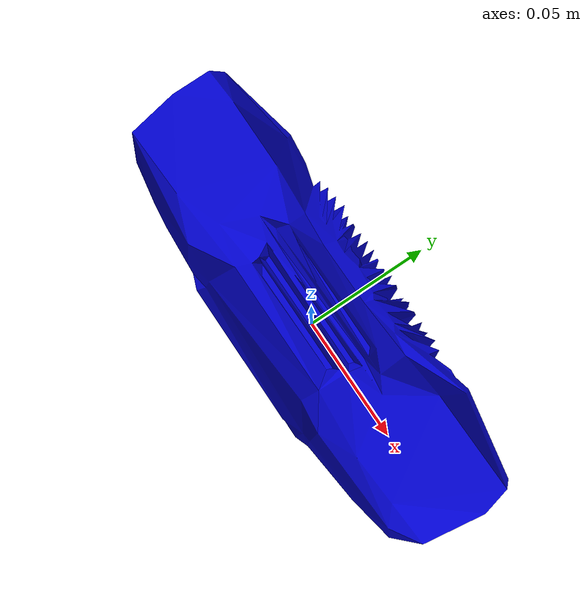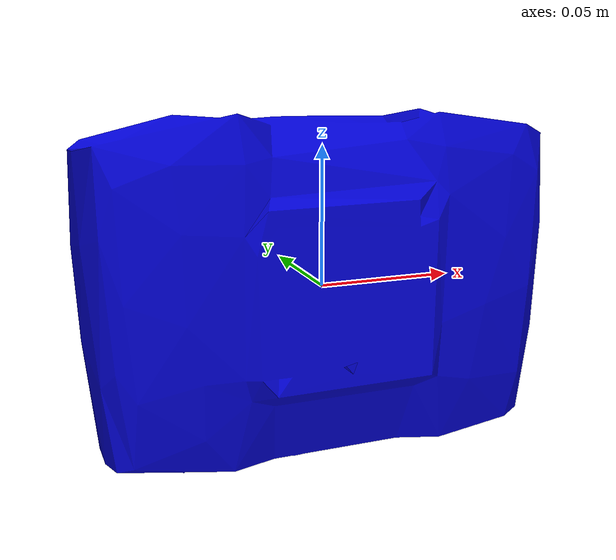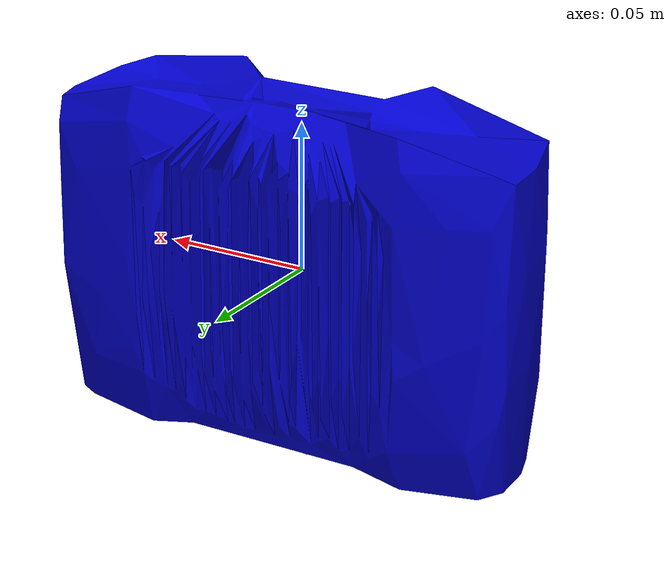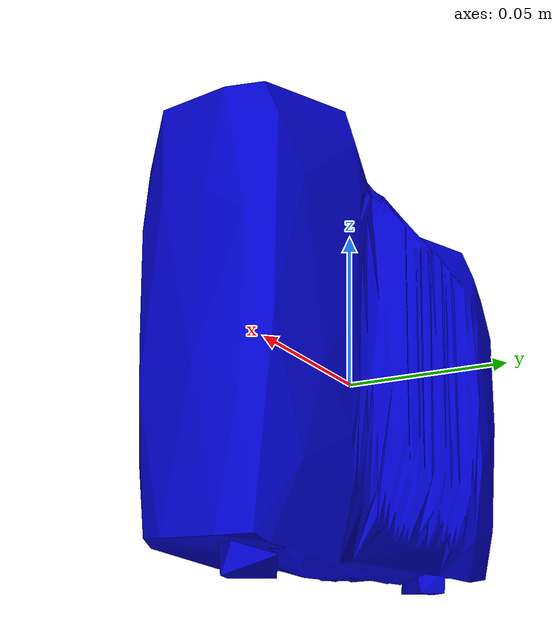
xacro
<?xml version="1.0"?>
<robot xmlns:xacro="http://www.ros.org/wiki/xacro" name="structured_light_sensor_robot">
  <xacro:property name="M_PI" value="3.1415926535897931" />

  <link name="base_link" />

  <joint name="base_sensor" type="fixed">
    <parent link="base_link"/>
    <child link="sensor_link"/>
    <origin xyz="0 0 0" rpy="0 0 0"/>
  </joint>

  <link name="sensor_link">
    <inertial>
      <mass value="0.1"/>
      <inertia ixx="0.01" ixy="0.0" ixz="0.0" iyy="0.01" iyz="0.0" izz="0.01"/>
      <origin xyz="0 0 0" rpy="0 0 0"/>
    </inertial>

    <visual>
      <geometry>
        <mesh filename="package://viewpoint_planning/meshes/zivid_sensor.stl" scale="0.001 0.001 0.001"/>
      </geometry>
      <material name="blue">
        <color rgba="0.0 0.0 0.8 1.0"/>
      </material>
    </visual>

    <collision>
      <geometry>
        <box size="0.17 0.06 0.125"/>
      </geometry>
    </collision>
  </link>

  <joint name="camera_joint" type="fixed">
    <parent link="sensor_link"/>
    <child link="camera_link"/>
    <origin xyz="0 0 0.05" rpy="-${M_PI/2} -${M_PI/2} 0"/>
  </joint>

  <link name="camera_link" />

  <joint name="camera_optical_joint" type="fixed">
    <parent link= "camera_link" />
    <child link= "camera_link_optical" />
    <origin xyz="0 0 0" rpy="-${M_PI/2} 0 -${M_PI/2}" />
  </joint>

  <link name="camera_link_optical" />

  <!-- Gazebo plugin for the structured light sensor -->
  <gazebo reference="sensor_link">
        <material>Gazebo/Blue</material>
  </gazebo>

  <gazebo reference="camera_link">
        <sensor name="camera" type="depth" update_rate="10" >

            <visualize>true</visualize>

            <pose> 0 0 0 0 0 0 </pose>

            <camera>
                <horizontal_fov>1.089</horizontal_fov>
                <image>
                    <width>640</width>
                    <height>480</height>
                    <format>B8G8R8</format>
                </image>
                <clip>
                    <near>0.3</near>
                    <far>1.1</far>
                </clip>
            </camera>

            <plugin name="camera_controller" filename="libgazebo_ros_openni_kinect.so">
                <imageTopicName>/color/image_raw</imageTopicName>
                <cameraInfoTopicName>/color/camera_info</cameraInfoTopicName>
                <depthImageTopicName>/depth/image_raw</depthImageTopicName>
                <depthImageCameraInfoTopicName>/depth/camera_info</depthImageCameraInfoTopicName>
                <pointCloudTopicName>/depth/points</pointCloudTopicName>

                <frameName>camera_link_optical</frameName>
                <pointCloudCutoff>0.3</pointCloudCutoff>
                <pointCloudCutoffMax>1.5</pointCloudCutoffMax>

            </plugin>

        </sensor>

    </gazebo>

</robot>
